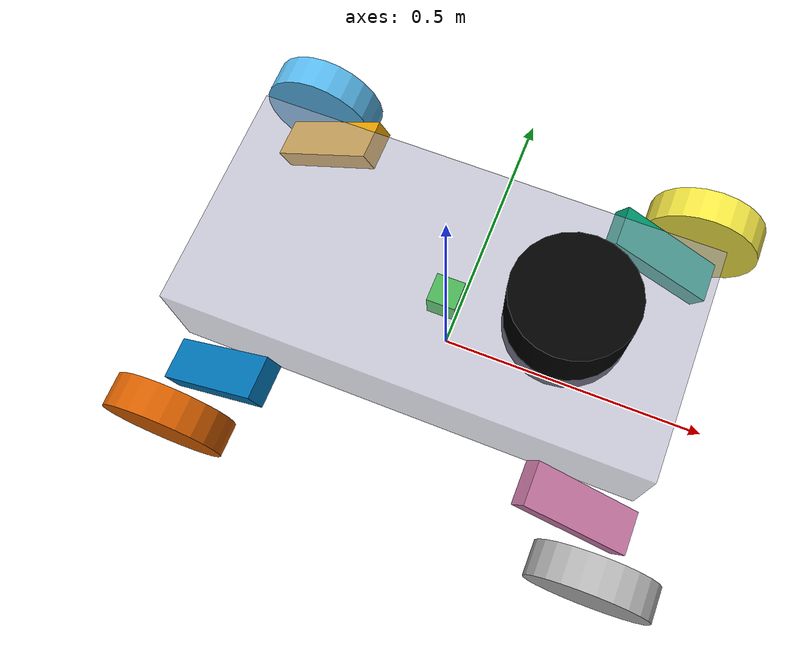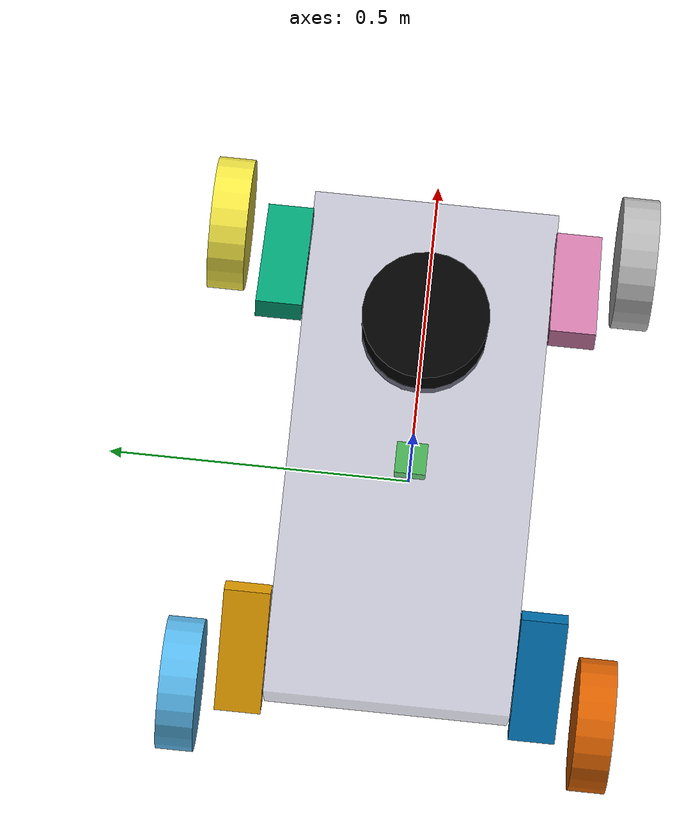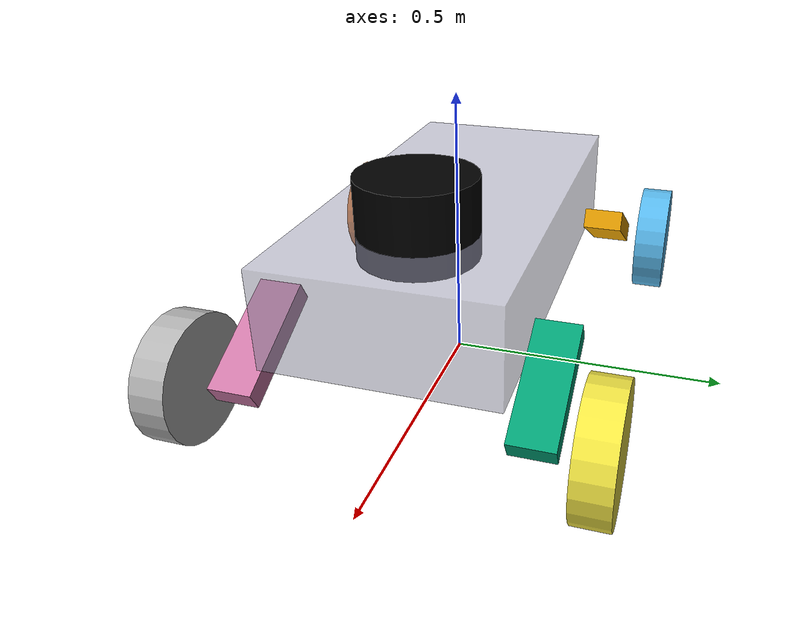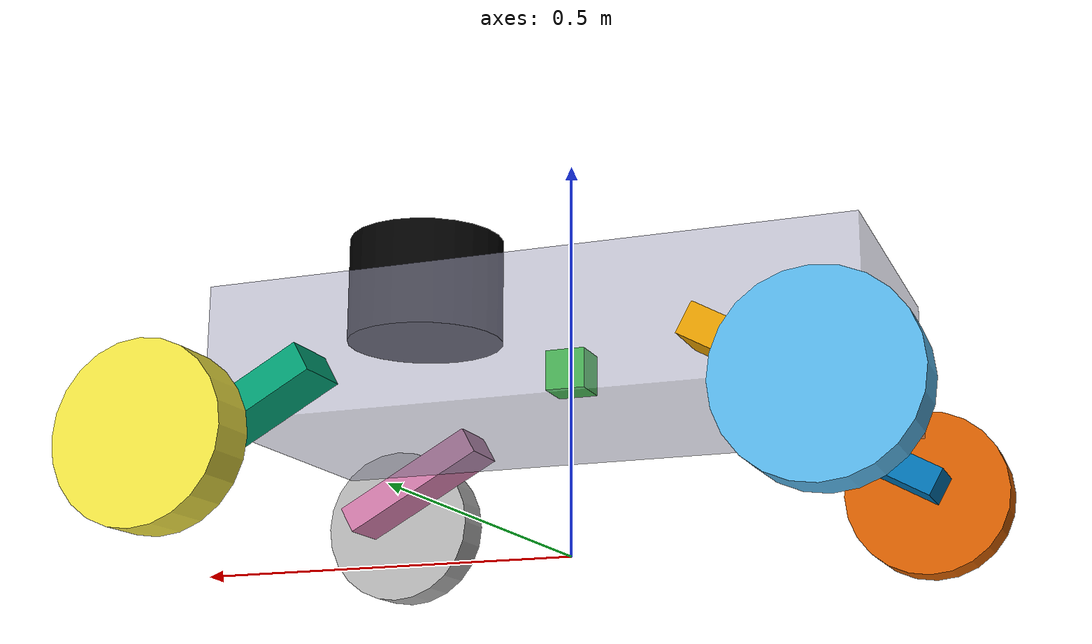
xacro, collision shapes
<?xml version="1.0" encoding="utf-8"?>

<robot name="ELM4-Chassis" xmlns:xacro="http://www.ros.org/wiki/xacro">

    <xacro:include filename="$(find skidbot_description)/urdf/skidbot.gazebo" />
    <xacro:include filename="$(find skidbot_description)/urdf/skidbot_ros2_control.xacro" />

  <link name="base_footprint"/>

  <joint name="footprint_joint" type="fixed">
    <parent link="base_footprint"/>
    <child  link="base_link"/>
    <origin xyz="0 0 0.154" rpy="0 0 0"/>
  </joint>

  <link name="base_link">
    <inertial>
      <origin xyz="0 0 0" rpy="0 0 0"/>
      <mass value="18.71"/>
      <inertia ixx="0.3986" ixy="0"      ixz="0"
               iyy="1.092"  iyz="0"
               izz="1.337"/>
    </inertial>

    <collision>
      <origin xyz="0 0 0.0875" rpy="0 0 0"/>
      <geometry>
        <box size="0.8 0.389 0.171"/>
      </geometry>
    </collision>

    <visual>
      <origin xyz="0 0 0" rpy="0 0 0"/>
      <geometry>
        <mesh filename="package://skidbot_description/meshes/BaseMetal.dae" scale="1 1 1"/>
      </geometry>
    </visual>

    <visual>
      <origin xyz="0 0 0" rpy="0 0 0"/>
      <geometry>
        <mesh filename="package://skidbot_description/meshes/BaseRubber.dae" scale="1 1 1"/>
      </geometry>
    </visual>

    <visual>
      <origin xyz="0 0 0" rpy="0 0 0"/>
      <geometry>
        <mesh filename="package://skidbot_description/meshes/BasePlastic.dae" scale="1 1 1"/>
      </geometry>
    </visual>

    <visual>
      <origin xyz="0 0 0" rpy="0 0 0"/>
      <geometry>
        <mesh filename="package://skidbot_description/meshes/BaseClear.dae" scale="1 1 1"/>
      </geometry>
      <material name="clear_guard">
        <color rgba="0.6 0.6 0.7 0.5"/>
      </material>
    </visual>
  </link>

  <link name="front_left_arm">
    <inertial>
      <origin xyz="0 0 0" rpy="0 0 0"/>
      <mass value="1.16"/>
      <inertia ixx="0.006274" ixy="0.002744" ixz="0"
               iyy="0.007678" iyz="0"
               izz="0.009408"/>
    </inertial>
    <collision>
      <origin xyz="0.055 0 -0.0305" rpy="0 0.505 0"/>
      <geometry>
        <box size="0.21 0.075 0.038"/>
      </geometry>
    </collision>
    <visual>
      <origin xyz="0 0 0" rpy="0 0 0"/>
      <geometry>
        <mesh filename="package://skidbot_description/meshes/ArmLeftMetal.dae" scale="1 1 1"/>
      </geometry>
    </visual>
    <visual>
      <origin xyz="0 0 0" rpy="0 0 0"/>
      <geometry>
        <mesh filename="package://skidbot_description/meshes/ArmLeftPlastic.dae" scale="1 1 1"/>
      </geometry>
    </visual>
  </link>

  <joint name="front_left_arm_joint" type="fixed">
    <parent link="base_link"/>
    <child  link="front_left_arm"/>
    <origin xyz="0.263 0.238 0.029" rpy="0 0 0"/>
  </joint>

  <link name="front_left_wheel">
    <inertial>
      <origin xyz="0 0 0" rpy="0 0 0"/>
      <mass value="3.854"/>
      <inertia ixx="0.009002" ixy="0.0006021" ixz="0"
               iyy="0.01313"  iyz="0"
               izz="0.009003"/>
    </inertial>

    <collision>
      <origin xyz="0 0 0" rpy="1.5707963267948966 0 0"/>
      <geometry>
        <cylinder radius="0.108" length="0.06"/>
      </geometry>
    </collision>

    <visual>
      <origin xyz="0 0 0" rpy="0 0 3.14159265359"/>
      <geometry>
        <mesh filename="package://skidbot_description/meshes/HubMotor.dae" scale="1 1 1"/>
      </geometry>
    </visual>
    <visual>
      <origin xyz="0 0 0" rpy="0 0 3.14159265359"/>
      <geometry>
        <mesh filename="package://skidbot_description/meshes/RubberWheel.dae" scale="1 1 1"/>
      </geometry>
    </visual>
  </link>

  <joint name="front_left_wheel_joint" type="continuous">
    <parent link="front_left_arm"/>
    <child  link="front_left_wheel"/>
    <origin xyz="0.11861 0.095 -0.07453" rpy="0 0 0"/>
    <axis xyz="0 1 0"/>
  </joint>

  <link name="rear_right_arm">
    <inertial>
      <origin xyz="0 0 0" rpy="0 0 0"/>
      <mass value="1.16"/>
      <inertia ixx="0.006274" ixy="0.002744" ixz="0"
               iyy="0.007678" iyz="0"
               izz="0.009408"/>
    </inertial>
    <collision>
      <origin xyz="0.055 0 -0.0305" rpy="0 0.505 0"/>
      <geometry>
        <box size="0.21 0.075 0.038"/>
      </geometry>
    </collision>
    <visual>
      <origin xyz="0 0 0" rpy="0 0 0"/>
      <geometry>
        <mesh filename="package://skidbot_description/meshes/ArmLeftMetal.dae" scale="1 1 1"/>
      </geometry>
    </visual>
    <visual>
      <origin xyz="0 0 0" rpy="0 0 0"/>
      <geometry>
        <mesh filename="package://skidbot_description/meshes/ArmLeftPlastic.dae" scale="1 1 1"/>
      </geometry>
    </visual>
  </link>

  <joint name="rear_right_arm_joint" type="fixed">
    <parent link="base_link"/>
    <child  link="rear_right_arm"/>
    <origin xyz="-0.263 -0.238 0.029" rpy="0 0 3.14159265359"/>
  </joint>

  <link name="rear_right_wheel">
    <inertial>
      <origin xyz="0 0 0" rpy="0 0 0"/>
      <mass value="3.854"/>
      <inertia ixx="0.009002" ixy="0.0006021" ixz="0"
               iyy="0.01313"  iyz="0"
               izz="0.009003"/>
    </inertial>
    <collision>
      <origin xyz="0 0 0" rpy="1.5707963267948966 0 0"/>
      <geometry>
        <cylinder radius="0.108" length="0.06"/>
      </geometry>
    </collision>

    <visual>
      <origin xyz="0 0 0" rpy="0 0 0"/>
      <geometry>
        <mesh filename="package://skidbot_description/meshes/HubMotor.dae" scale="1 1 1"/>
      </geometry>
    </visual>
    <visual>
      <origin xyz="0 0 0" rpy="0 0 0"/>
      <geometry>
        <mesh filename="package://skidbot_description/meshes/RubberWheel.dae" scale="1 1 1"/>
      </geometry>
    </visual>
  </link>

  <joint name="rear_right_wheel_joint" type="continuous">
    <parent link="rear_right_arm"/>
    <child  link="rear_right_wheel"/>
    <origin xyz="0.11861 0.095 -0.07453" rpy="0 0 3.14159265359"/>
    <axis xyz="0 1 0"/>
  </joint>

  <link name="front_right_arm">
    <inertial>
      <origin xyz="0 0 0" rpy="0 0 0"/>
      <mass value="1.16"/>
      <inertia ixx="0.006274" ixy="0.002744" ixz="0"
               iyy="0.007678" iyz="0"
               izz="0.009408"/>
    </inertial>
    <collision>
      <origin xyz="0.055 0 -0.0305" rpy="0 0.505 0"/>
      <geometry>
        <box size="0.21 0.075 0.038"/>
      </geometry>
    </collision>
    <visual>
      <origin xyz="0 0 0" rpy="0 -0.017 0"/>
      <geometry>
        <mesh filename="package://skidbot_description/meshes/ArmRightMetal.dae" scale="1 1 1"/>
      </geometry>
    </visual>
    <visual>
      <origin xyz="0 0 0" rpy="0 -0.017 0"/>
      <geometry>
        <mesh filename="package://skidbot_description/meshes/ArmRightPlastic.dae" scale="1 1 1"/>
      </geometry>
    </visual>
  </link>

  <joint name="front_right_arm_joint" type="fixed">
    <parent link="base_link"/>
    <child  link="front_right_arm"/>
    <origin xyz="0.263 -0.238 0.029" rpy="0 0 0"/>
  </joint>

  <link name="front_right_wheel">
    <inertial>
      <origin xyz="0 0 0" rpy="0 0 0"/>
      <mass value="3.854"/>
      <inertia ixx="0.009002" ixy="0.0006021" ixz="0"
               iyy="0.01313"  iyz="0"
               izz="0.009003"/>
    </inertial>
    <collision>
      <origin xyz="0 0 0" rpy="1.5707963267948966 0 0"/>
      <geometry>
        <cylinder radius="0.108" length="0.06"/>
      </geometry>
    </collision>
    <visual>
      <origin xyz="0 0 0" rpy="0 0 0"/>
      <geometry>
        <mesh filename="package://skidbot_description/meshes/HubMotor.dae" scale="1 1 1"/>
      </geometry>
    </visual>
    <visual>
      <origin xyz="0 0 0" rpy="0 0 0"/>
      <geometry>
        <mesh filename="package://skidbot_description/meshes/RubberWheel.dae" scale="1 1 1"/>
      </geometry>
    </visual>
  </link>

  <joint name="front_right_wheel_joint" type="continuous">
    <parent link="front_right_arm"/>
    <child  link="front_right_wheel"/>
    <origin xyz="0.11861 -0.095 -0.07453" rpy="0 0 0"/>
    <axis xyz="0 1 0"/>
  </joint>

  <link name="rear_left_arm">
    <inertial>
      <origin xyz="0 0 0" rpy="0 0 0"/>
      <mass value="1.16"/>
      <inertia ixx="0.006274" ixy="0.002744" ixz="0"
               iyy="0.007678" iyz="0"
               izz="0.009408"/>
    </inertial>
    <collision>
      <origin xyz="0.055 0 -0.0305" rpy="0 0.505 0"/>
      <geometry>
        <box size="0.21 0.075 0.038"/>
      </geometry>
    </collision>
    <visual>
      <origin xyz="0 0 0" rpy="0 -0.017 0"/>
      <geometry>
        <mesh filename="package://skidbot_description/meshes/ArmRightMetal.dae" scale="1 1 1"/>
      </geometry>
    </visual>
    <visual>
      <origin xyz="0 0 0" rpy="0 -0.017 0"/>
      <geometry>
        <mesh filename="package://skidbot_description/meshes/ArmRightPlastic.dae" scale="1 1 1"/>
      </geometry>
    </visual>
  </link>

  <joint name="rear_left_arm_joint" type="fixed">
    <parent link="base_link"/>
    <child  link="rear_left_arm"/>
    <origin xyz="-0.263 0.238 0.029" rpy="0 0 3.14159265359"/>
  </joint>

  <link name="rear_left_wheel">
    <inertial>
      <origin xyz="0 0 0" rpy="0 0 0"/>
      <mass value="3.854"/>
      <inertia ixx="0.009002" ixy="0.0006021" ixz="0"
               iyy="0.01313"  iyz="0"
               izz="0.009003"/>
    </inertial>
    <collision>
      <origin xyz="0 0 0" rpy="1.5707963267948966 0 0"/>
      <geometry>
        <cylinder radius="0.108" length="0.06"/>
      </geometry>
    </collision>
    <visual>
      <origin xyz="0 0 0" rpy="0 0 3.14159265359"/>
      <geometry>
        <mesh filename="package://skidbot_description/meshes/HubMotor.dae" scale="1 1 1"/>
      </geometry>
    </visual>
    <visual>
      <origin xyz="0 0 0" rpy="0 0 3.14159265359"/>
      <geometry>
        <mesh filename="package://skidbot_description/meshes/RubberWheel.dae" scale="1 1 1"/>
      </geometry>
    </visual>
  </link>

  <joint name="rear_left_wheel_joint" type="continuous">
    <parent link="rear_left_arm"/>
    <child  link="rear_left_wheel"/>
    <origin xyz="0.11861 -0.095 -0.07453" rpy="0 0 3.14159265359"/>
    <axis xyz="0 1 0"/>
  </joint>

  <link name="imu_link">
    <visual>
      <origin xyz="0 0 0" rpy="0 0 0"/>
      <geometry>
        <box size="0.05 0.05 0.05"/>
      </geometry>
      <material name="imu_material">
        <color rgba="0.0 0.8 0.0 1"/>
      </material>
    </visual>
    <collision>
      <origin xyz="0 0 0" rpy="0 0 0"/>
      <geometry>
        <box size="0.05 0.05 0.05"/>
      </geometry>
    </collision>
    <inertial>
      <origin xyz="0 0 0" rpy="0 0 0"/>
      <mass value="0.1"/>
      <inertia ixx="0.000042" ixy="0" ixz="0"
               iyy="0.000042" iyz="0"
               izz="0.000042"/>
    </inertial>
  </link>

  <joint name="imu_joint" type="fixed">
    <parent link="base_link"/>
    <child  link="imu_link"/>
    <origin xyz="0 0 0.075" rpy="0 0 0"/>
  </joint>

  <link name="navsat_link">
    <visual>
      <origin xyz="0 0 0" rpy="0 0 0"/>
      <geometry>
        <box size="0.05 0.05 0.05"/>
      </geometry>
      <material name="navsat_material">
        <color rgba="0.0 0.8 0.0 1"/>
      </material>
    </visual>
    <collision>
      <origin xyz="0 0 0" rpy="0 0 0"/>
      <geometry>
        <box size="0.05 0.05 0.05"/>
      </geometry>
    </collision>
    <inertial>
      <origin xyz="0 0 0" rpy="0 0 0"/>
      <mass value="0.1"/>
      <inertia ixx="0.000042" ixy="0" ixz="0"
               iyy="0.000042" iyz="0"
               izz="0.000042"/>
    </inertial>
  </link>

  <joint name="navsat_joint" type="fixed">
    <parent link="base_link"/>
    <child  link="navsat_link"/>
    <origin xyz="0 0 0.075" rpy="0 0 0"/>
  </joint>

  <link name="lidar">
    <visual>
      <origin xyz="0 0 0" rpy="0 0 0"/>
      <geometry>
        <cylinder radius="0.1" length="0.13538975482266932"/>
      </geometry>
      <material name="lidar_material">
        <color rgba="0 0 0 1"/>
      </material>
    </visual>
    <collision>
      <origin xyz="0 0 0" rpy="0 0 0"/>
      <geometry>
        <cylinder radius="0.1" length="0.13538975482266932"/>
      </geometry>
    </collision>
    <inertial>
      <origin xyz="0 0 0" rpy="0 0 0"/>
      <mass value="1.0"/>
      <inertia ixx="0.3333333333333333" ixy="0" ixz="0"
               iyy="0.5"               iyz="0"
               izz="0.3333333333333333"/>
    </inertial>
  </link>

  <joint name="base_link_to_lidar" type="fixed">
    <parent link="base_link"/>
    <child  link="lidar"/>
    <origin xyz="0.2 0 0.2" rpy="0 0 0"/>
  </joint>

</robot>
